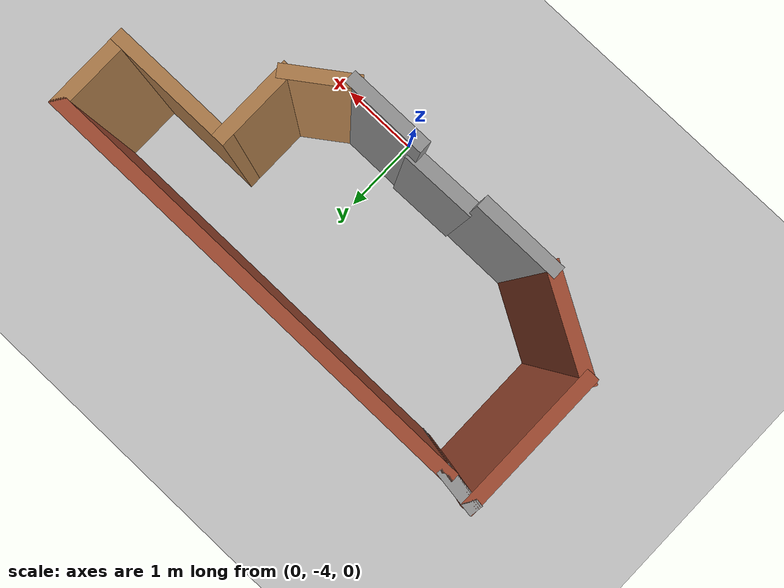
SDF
<sdf version="1.7">
 <world name="default">
  <light name="sun" type="directional">
   <pose>0 0 10 0 -0 0</pose>
   <diffuse>0.8 0.8 0.8 1</diffuse>
   <specular>0.2 0.2 0.2 1</specular>
   <attenuation>
    <range>1000</range>
    <constant>0.9</constant>
    <linear>0.01</linear>
    <quadratic>0.001</quadratic>
   </attenuation>
   <direction>-0.5 0.1 -0.9</direction>
   <spot><inner_angle>0</inner_angle><outer_angle>0</outer_angle><falloff>0</falloff></spot>
  </light>
  <model name="ground_plane">
   <static>1</static>
   <link name="link">
    <collision name="collision">
     <geometry><plane><normal>0 0 1</normal><size>100 100</size></plane></geometry>
     <surface><friction><ode><mu>100</mu><mu2>50</mu2></ode></friction></surface>
    </collision>
    <visual name="visual">
     <cast_shadows>0</cast_shadows>
     <geometry><plane><normal>0 0 1</normal><size>100 100</size></plane></geometry>
     <material>
      <script><uri>file://media/materials/scripts/gazebo.material</uri><name>Gazebo/Grey</name></script>
     </material>
    </visual>
   </link>
  </model>
  <gravity>0 0 -9.8</gravity>
  <magnetic_field>6e-06 2.3e-05 -4.2e-05</magnetic_field>
  <atmosphere type="adiabatic"/>
  <physics type="ode">
   <max_step_size>0.001</max_step_size>
   <real_time_factor>1</real_time_factor>
   <real_time_update_rate>1000</real_time_update_rate>
  </physics>
  <scene><ambient>0.4 0.4 0.4 1</ambient><background>0.7 0.7 0.7 1</background><shadows>1</shadows></scene>
  <spherical_coordinates>
   <surface_model>EARTH_WGS84</surface_model>
   <latitude_deg>0</latitude_deg>
   <longitude_deg>0</longitude_deg>
   <elevation>0</elevation>
   <heading_deg>0</heading_deg>
  </spherical_coordinates>
  <model name="homee">
   <pose>-0.24004 -1.85231 0 0 -0 0</pose>
   <link name="Door_2">
    <collision name="Door_2_Collision">
     <geometry><box><size>0.9 0.17 2</size></box></geometry>
     <pose>0 0 1 0 -0 0</pose>
    </collision>
    <visual name="Door_2_Visual">
     <pose>0 0 1 0 -0 0</pose>
     <geometry><box><size>0.9 0.17 2</size></box></geometry>
     <material>
      <script><uri>file://media/materials/scripts/gazebo.material</uri><name>Gazebo/Grey</name></script>
     </material>
    </visual>
    <pose>-0.423873 -1.7303 0 0 -0 0.012767</pose>
   </link>
   <link name="Wall_1">
    <collision name="Wall_1_Collision">
     <geometry><box><size>5.25 0.15 2.5</size></box></geometry>
     <pose>0 0 1.25 0 -0 0</pose>
    </collision>
    <visual name="Wall_1_Visual">
     <pose>0 0 1.25 0 -0 0</pose>
     <geometry><box><size>5.25 0.15 2.5</size></box></geometry>
     <material>
      <script><uri>file://media/materials/scripts/gazebo.material</uri><name>Gazebo/Bricks</name></script>
      <ambient>1 1 1 1</ambient>
     </material>
     <meta><layer>0</layer></meta>
    </visual>
    <pose>0.19004 0.352311 0 0 -0 0</pose>
   </link>
   <link name="Wall_10">
    <collision name="Wall_10_Collision">
     <geometry><box><size>1.75 0.15 2.5</size></box></geometry>
     <pose>0 0 1.25 0 -0 0</pose>
    </collision>
    <visual name="Wall_10_Visual">
     <pose>0 0 1.25 0 -0 0</pose>
     <geometry><box><size>1.75 0.15 2.5</size></box></geometry>
     <material>
      <script><uri>file://media/materials/scripts/gazebo.material</uri><name>Gazebo/Bricks</name></script>
      <ambient>1 1 1 1</ambient>
     </material>
     <meta><layer>0</layer></meta>
    </visual>
    <pose>-2.71259 -0.397689 0 0 -0 1.5708</pose>
   </link>
   <link name="Wall_11">
    <collision name="Wall_11_Collision">
     <geometry><box><size>0.506155 0.15 2.5</size></box></geometry>
     <pose>0 0 1.25 0 -0 0</pose>
    </collision>
    <visual name="Wall_11_Visual">
     <pose>0 0 1.25 0 -0 0</pose>
     <geometry><box><size>0.506155 0.15 2.5</size></box></geometry>
     <material>
      <script><uri>file://media/materials/scripts/gazebo.material</uri><name>Gazebo/Grey</name></script>
      <ambient>1 1 1 1</ambient>
     </material>
     <meta><layer>0</layer></meta>
    </visual>
    <pose>-2.53627 0.377311 0 0 -0 -0.140854</pose>
   </link>
   <link name="Wall_12">
    <collision name="Wall_12_Collision">
     <geometry><box><size>0.506155 0.15 2.5</size></box></geometry>
     <pose>0 0 1.25 0 -0 0</pose>
    </collision>
    <visual name="Wall_12_Visual">
     <pose>0 0 1.25 0 -0 0</pose>
     <geometry><box><size>0.506155 0.15 2.5</size></box></geometry>
     <material>
      <script><uri>file://media/materials/scripts/gazebo.material</uri><name>Gazebo/Bricks</name></script>
      <ambient>1 1 1 1</ambient>
     </material>
     <meta><layer>0</layer></meta>
    </visual>
    <pose>-2.53627 0.377311 0 0 -0 3.00074</pose>
   </link>
   <link name="Wall_14">
    <collision name="Wall_14_Collision">
     <geometry><box><size>1 0.15 2.5</size></box></geometry>
     <pose>0 0 1.25 0 -0 0</pose>
    </collision>
    <visual name="Wall_14_Visual">
     <pose>0 0 1.25 0 -0 0</pose>
     <geometry><box><size>1 0.15 2.5</size></box></geometry>
     <material>
      <script><uri>file://media/materials/scripts/gazebo.material</uri><name>Gazebo/Grey</name></script>
      <ambient>1 1 1 1</ambient>
     </material>
     <meta><layer>0</layer></meta>
    </visual>
    <pose>-1.33496 -1.74769 0 0 -0 0</pose>
   </link>
   <link name="Wall_16">
    <collision name="Wall_16_Collision">
     <geometry><box><size>1 0.15 2.5</size></box></geometry>
     <pose>0 0 1.25 0 -0 0</pose>
    </collision>
    <visual name="Wall_16_Visual">
     <pose>0 0 1.25 0 -0 0</pose>
     <geometry><box><size>1 0.15 2.5</size></box></geometry>
     <material>
      <script><uri>file://media/materials/scripts/gazebo.material</uri><name>Gazebo/Grey</name></script>
      <ambient>1 1 1 1</ambient>
     </material>
     <meta><layer>0</layer></meta>
    </visual>
    <pose>0.40504 -1.74769 0 0 -0 3.14159</pose>
   </link>
   <link name="Wall_2">
    <collision name="Wall_2_Collision">
     <geometry><box><size>1 0.15 2.5</size></box></geometry>
     <pose>0 0 1.25 0 -0 0</pose>
    </collision>
    <visual name="Wall_2_Visual">
     <pose>0 0 1.25 0 -0 0</pose>
     <geometry><box><size>1 0.15 2.5</size></box></geometry>
     <material>
      <script><uri>file://media/materials/scripts/gazebo.material</uri><name>Gazebo/Wood</name></script>
      <ambient>1 1 1 1</ambient>
     </material>
     <meta><layer>0</layer></meta>
    </visual>
    <pose>2.74004 -0.072688 0 0 -0 -1.5708</pose>
   </link>
   <link name="Wall_3">
    <collision name="Wall_3_Collision">
     <geometry><box><size>1.5 0.15 2.5</size></box></geometry>
     <pose>0 0 1.25 0 -0 0</pose>
    </collision>
    <visual name="Wall_3_Visual">
     <pose>0 0 1.25 0 -0 0</pose>
     <geometry><box><size>1.5 0.15 2.5</size></box></geometry>
     <material>
      <script><uri>file://media/materials/scripts/gazebo.material</uri><name>Gazebo/Wood</name></script>
      <ambient>1 1 1 1</ambient>
     </material>
     <meta><layer>0</layer></meta>
    </visual>
    <pose>2.06504 -0.497688 0 0 -0 3.14159</pose>
   </link>
   <link name="Wall_4">
    <collision name="Wall_4_Collision">
     <geometry><box><size>1 0.15 2.5</size></box></geometry>
     <pose>0 0 1.25 0 -0 0</pose>
    </collision>
    <visual name="Wall_4_Visual">
     <pose>0 0 1.25 0 -0 0</pose>
     <geometry><box><size>1 0.15 2.5</size></box></geometry>
     <material>
      <script><uri>file://media/materials/scripts/gazebo.material</uri><name>Gazebo/Wood</name></script>
      <ambient>1 1 1 1</ambient>
     </material>
     <meta><layer>0</layer></meta>
    </visual>
    <pose>1.39004 -0.922689 0 0 -0 -1.5708</pose>
   </link>
   <link name="Wall_5">
    <collision name="Wall_5_Collision">
     <geometry><box><size>0.838186 0.15 2.5</size></box></geometry>
     <pose>0 0 1.25 0 -0 0</pose>
    </collision>
    <visual name="Wall_5_Visual">
     <pose>0 0 1.25 0 -0 0</pose>
     <geometry><box><size>0.838186 0.15 2.5</size></box></geometry>
     <material>
      <script><uri>file://media/materials/scripts/gazebo.material</uri><name>Gazebo/Wood</name></script>
      <ambient>1 1 1 1</ambient>
     </material>
     <meta><layer>0</layer></meta>
    </visual>
    <pose>1.11004 -1.54769 0 0 -0 -2.52134</pose>
   </link>
   <link name="Wall_9">
    <collision name="Wall_9_Collision">
     <geometry><box><size>1.25 0.15 2.5</size></box></geometry>
     <pose>0 0 1.25 0 -0 0</pose>
    </collision>
    <visual name="Wall_9_Visual">
     <pose>0 0 1.25 0 -0 0</pose>
     <geometry><box><size>1.25 0.15 2.5</size></box></geometry>
     <material>
      <script><uri>file://media/materials/scripts/gazebo.material</uri><name>Gazebo/Bricks</name></script>
      <ambient>1 1 1 1</ambient>
     </material>
     <meta><layer>0</layer></meta>
    </visual>
    <pose>-2.23627 -1.47269 0 0 -0 2.61799</pose>
   </link>
   <static>1</static>
  </model>
 </world>
</sdf>
